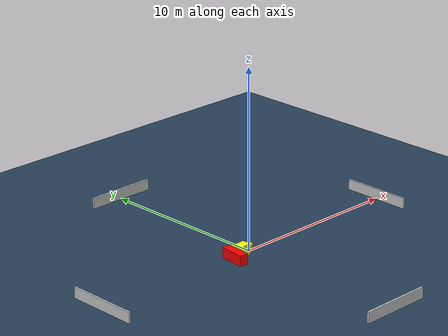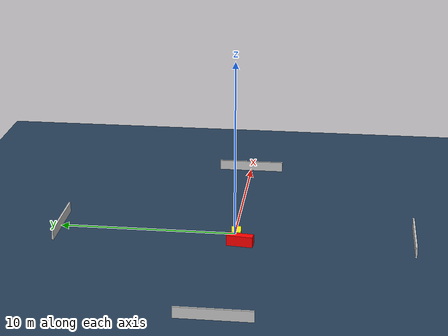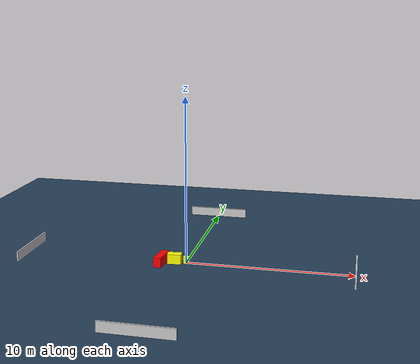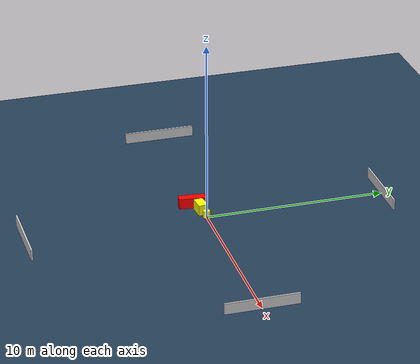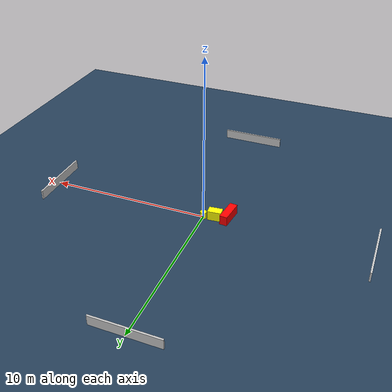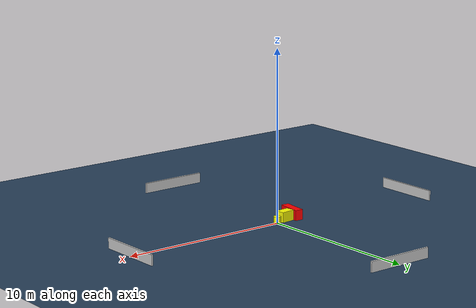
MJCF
<?xml version="1.0" ?>
<mujoco model="generated_environment">
  <option timestep="0.01" integrator="RK4" cone="elliptic"/>
  <default>
    <geom density="1"/>
  </default>
  <asset>
    <texture builtin="gradient" height="3072" name="skybox" rgb1="0.3 0.5 0.7" rgb2="0 0 0" type="skybox" width="512"/>
    <texture builtin="checker" height="300" name="groundplane" rgb1="0.2 0.3 0.4" rgb2="0.1 0.2 0.3" type="2d" width="300"/>
    <material name="groundplane" reflectance="0.2" texrepeat="5 5" texture="groundplane"/>
  </asset>
  <worldbody>
    <light dir="0 0 -1" directional="true" pos="0 0 1.5"/>
    <geom condim="3" friction="0.5 0.005 0.001" material="groundplane" name="floor" pos="0 0 0" size="0 0 0.05" type="plane"/>
    <body name="walls">
      <geom name="wall_1" condim="4" pos="-10.0 0.0 0.3" rgba="0.800000011920929 0.800000011920929 0.800000011920929 1.0" size="0.05 2.0 0.3" type="box"/>
      <geom name="wall_2" condim="4" pos="10.0 0.0 0.3" rgba="0.800000011920929 0.800000011920929 0.800000011920929 1.0" size="0.05 2.0 0.3" type="box"/>
      <geom name="wall_3" condim="4" pos="0.0 -10.0 0.3" rgba="0.800000011920929 0.800000011920929 0.800000011920929 1.0" size="2.0 0.05 0.3" type="box"/>
      <geom name="wall_4" condim="4" pos="0.0 10.0 0.3" rgba="0.800000011920929 0.800000011920929 0.800000011920929 1.0" size="2.0 0.05 0.3" type="box"/>
    </body>
    <body name="robot">
      <joint name="joint_x" type="slide" pos="0 0 0" axis="1 0 0"/>
      <joint name="joint_y" type="slide" pos="0 0 0" axis="0 1 0"/>
      <geom name="robot" type="cylinder" pos="0.0 0.0 0.2" size="0.2 0.2 0.0" mass="5.0" friction="1.0 0.005 0.0001" condim="4" rgba="1.0 1.0 0.0 1.0"/>
    </body>
    <body name="obstacle_1_movable">
      <geom name="obstacle_1_movable" condim="4" pos="-0.6827617367767881 -0.1386830798823443 0.3" euler="0 0 274.72837038630536" friction="0.0 0.005 0.001" rgba="1.0 1.0 0.0 1.0" size="0.2578897779906191 0.4192904124300248 0.3" type="box" mass="0.1"/>
      <joint type="free"/>
    </body>
    <body name="obstacle_2_static">
      <geom name="obstacle_2_static" condim="4" pos="-1.4256328270096204 -0.4255725203796092 0.3" euler="0 0 353.8532782945083" friction="0.0 0.005 0.001" rgba="1.0 0.0 0.0 1.0" size="0.23599628439206818 0.731447518736194 0.3" type="box"/>
    </body>
  </worldbody>
  <actuator>
    <motor name="actuator_x" joint="joint_x" gear="1" ctrlrange="-1 1"/>
    <motor name="actuator_y" joint="joint_y" gear="1" ctrlrange="-1 1"/>
  </actuator>
</mujoco>
